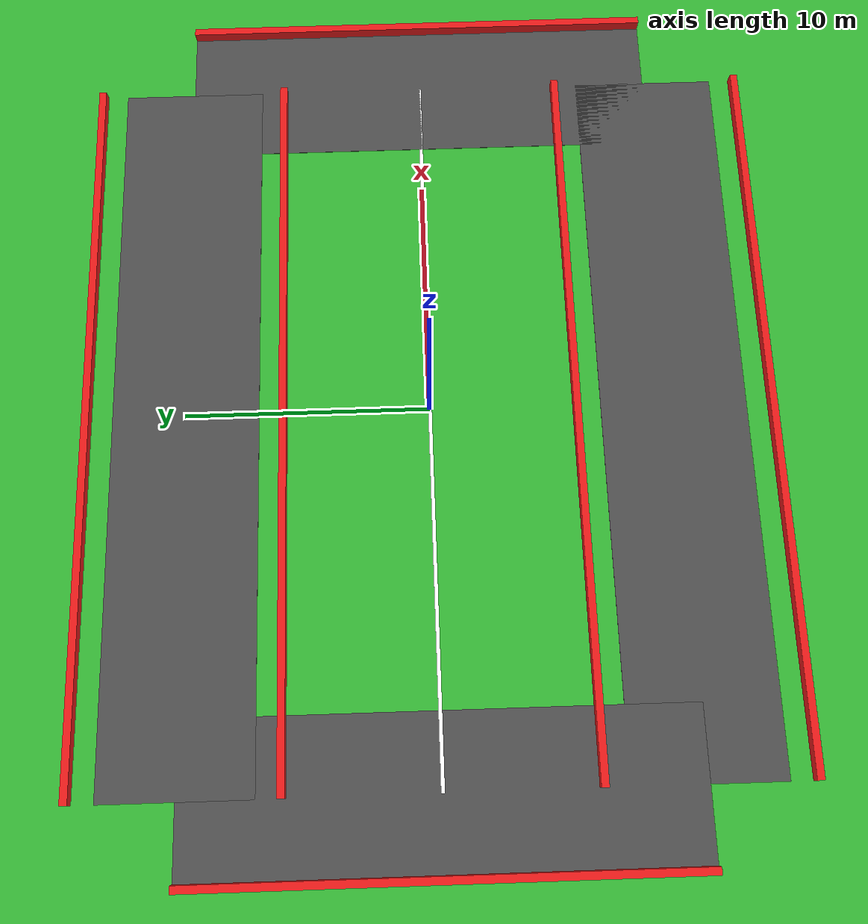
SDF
<sdf version="1.8">
 <world name="empty_world">
  <physics name="default_physics" type="ode">
   <max_step_size>0.001</max_step_size>
   <real_time_factor>1.0</real_time_factor>
   <real_time_update_rate>1000</real_time_update_rate>
  </physics>
  <plugin filename="gz-sim-physics-system" name="gz::sim::systems::Physics"/>
  <plugin filename="gz-sim-user-commands-system" name="gz::sim::systems::UserCommands"/>
  <plugin filename="gz-sim-scene-broadcaster-system" name="gz::sim::systems::SceneBroadcaster"/>
  <light type="directional" name="sun">
   <pose>0 0 10 0 0 0</pose>
   <diffuse>0.8 0.8 0.8 1</diffuse>
   <specular>0.2 0.2 0.2 1</specular>
   <direction>-0.5 0.1 -0.9</direction>
  </light>
  <model name="ground_plane">
   <static>true</static>
   <link name="link">
    <collision name="collision">
     <geometry><plane><normal>0 0 1</normal><size>100 100</size></plane></geometry>
    </collision>
    <visual name="visual">
     <geometry><plane><normal>0 0 1</normal><size>100 100</size></plane></geometry>
     <material><ambient>0.2 0.6 0.2 1</ambient><diffuse>0.2 0.7 0.2 1</diffuse></material>
    </visual>
   </link>
  </model>
  <model name="track_main">
   <static>true</static>
   <pose>0 0 0.01 0 0 0</pose>
   <link name="link">
    <visual name="straight_1">
     <pose>0 10 0 0 0 0</pose>
     <geometry><box><size>30 6 0.02</size></box></geometry>
     <material><ambient>0.2 0.2 0.2 1</ambient><diffuse>0.3 0.3 0.3 1</diffuse></material>
    </visual>
    <collision name="straight_1_collision">
     <pose>0 10 0 0 0 0</pose>
     <geometry><box><size>30 6 0.02</size></box></geometry>
    </collision>
    <visual name="straight_2">
     <pose>0 -10 0 0 0 0</pose>
     <geometry><box><size>30 6 0.02</size></box></geometry>
     <material><ambient>0.2 0.2 0.2 1</ambient><diffuse>0.3 0.3 0.3 1</diffuse></material>
    </visual>
    <collision name="straight_2_collision">
     <pose>0 -10 0 0 0 0</pose>
     <geometry><box><size>30 6 0.02</size></box></geometry>
    </collision>
    <visual name="curve_1">
     <pose>15 0 0 0 0 0</pose>
     <geometry><box><size>6 20 0.02</size></box></geometry>
     <material><ambient>0.2 0.2 0.2 1</ambient><diffuse>0.3 0.3 0.3 1</diffuse></material>
    </visual>
    <collision name="curve_1_collision">
     <pose>15 0 0 0 0 0</pose>
     <geometry><box><size>6 20 0.02</size></box></geometry>
    </collision>
    <visual name="curve_2">
     <pose>-15 0 0 0 0 0</pose>
     <geometry><box><size>6 20 0.02</size></box></geometry>
     <material><ambient>0.2 0.2 0.2 1</ambient><diffuse>0.3 0.3 0.3 1</diffuse></material>
    </visual>
    <collision name="curve_2_collision">
     <pose>-15 0 0 0 0 0</pose>
     <geometry><box><size>6 20 0.02</size></box></geometry>
    </collision>
    <visual name="center_line">
     <pose>0 0 0.005 0 0 0</pose>
     <geometry><box><size>30 0.15 0.01</size></box></geometry>
     <material><ambient>1 1 1 1</ambient><diffuse>1 1 1 1</diffuse></material>
    </visual>
   </link>
  </model>
  <model name="barrier_outer_1">
   <static>true</static>
   <pose>0 14 0.25 0 0 0</pose>
   <link name="link">
    <visual name="visual">
     <geometry><box><size>30 0.3 0.5</size></box></geometry>
     <material><ambient>0.8 0.1 0.1 1</ambient><diffuse>0.9 0.1 0.1 1</diffuse></material>
    </visual>
    <collision name="collision"><geometry><box><size>30 0.3 0.5</size></box></geometry></collision>
   </link>
  </model>
  <model name="barrier_outer_2">
   <static>true</static>
   <pose>0 -14 0.25 0 0 0</pose>
   <link name="link">
    <visual name="visual">
     <geometry><box><size>30 0.3 0.5</size></box></geometry>
     <material><ambient>0.8 0.1 0.1 1</ambient><diffuse>0.9 0.1 0.1 1</diffuse></material>
    </visual>
    <collision name="collision"><geometry><box><size>30 0.3 0.5</size></box></geometry></collision>
   </link>
  </model>
  <model name="barrier_inner_1">
   <static>true</static>
   <pose>0 6 0.25 0 0 0</pose>
   <link name="link">
    <visual name="visual">
     <geometry><box><size>30 0.3 0.5</size></box></geometry>
     <material><ambient>0.8 0.1 0.1 1</ambient><diffuse>0.9 0.1 0.1 1</diffuse></material>
    </visual>
    <collision name="collision"><geometry><box><size>30 0.3 0.5</size></box></geometry></collision>
   </link>
  </model>
  <model name="barrier_inner_2">
   <static>true</static>
   <pose>0 -6 0.25 0 0 0</pose>
   <link name="link">
    <visual name="visual">
     <geometry><box><size>30 0.3 0.5</size></box></geometry>
     <material><ambient>0.8 0.1 0.1 1</ambient><diffuse>0.9 0.1 0.1 1</diffuse></material>
    </visual>
    <collision name="collision"><geometry><box><size>30 0.3 0.5</size></box></geometry></collision>
   </link>
  </model>
  <model name="barrier_curve_1">
   <static>true</static>
   <pose>18 0 0.25 0 0 0</pose>
   <link name="link">
    <visual name="visual">
     <geometry><box><size>0.3 20 0.5</size></box></geometry>
     <material><ambient>0.8 0.1 0.1 1</ambient><diffuse>0.9 0.1 0.1 1</diffuse></material>
    </visual>
    <collision name="collision"><geometry><box><size>0.3 20 0.5</size></box></geometry></collision>
   </link>
  </model>
  <model name="barrier_curve_2">
   <static>true</static>
   <pose>-18 0 0.25 0 0 0</pose>
   <link name="link">
    <visual name="visual">
     <geometry><box><size>0.3 20 0.5</size></box></geometry>
     <material><ambient>0.8 0.1 0.1 1</ambient><diffuse>0.9 0.1 0.1 1</diffuse></material>
    </visual>
    <collision name="collision"><geometry><box><size>0.3 20 0.5</size></box></geometry></collision>
   </link>
  </model>
 </world>
</sdf>
